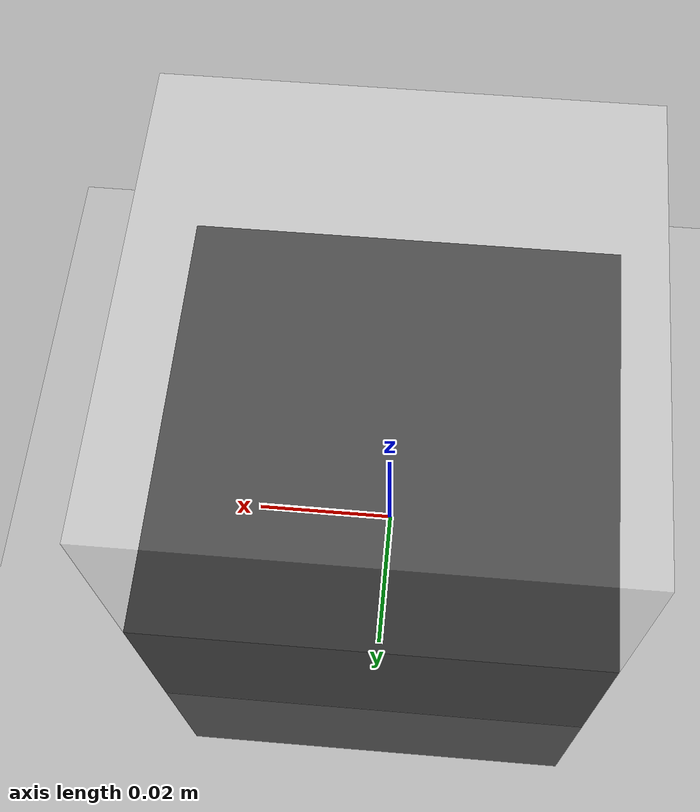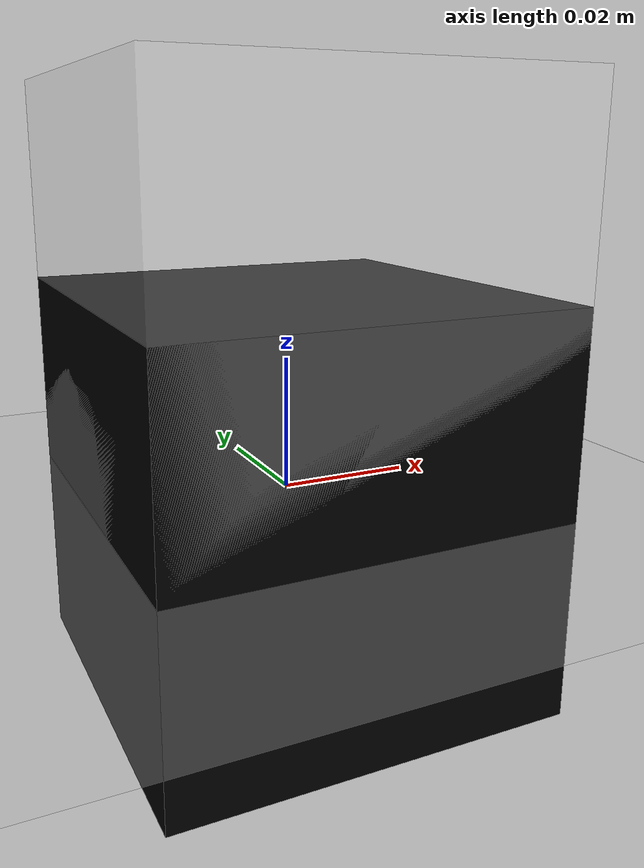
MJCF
<mujoco model="single_fingertip_scene">
    <visual>
        <global offwidth="1280" offheight="960"/>
    </visual>
    <compiler angle="radian"/>
    <size njmax="500" nconmax="100"/>
    <asset>
        <texture name="cube_surface" file="../assets/textures/iris_block.png" gridsize="3 4" gridlayout=".U..LFRB.D.."/>
        <material name="obj_material" texture="cube_surface" specular="15" shininess="0.0"/>
        <texture type="2d" name="groundplane" builtin="checker" mark="edge"
                 rgb1="0.2 0.3 0.4" rgb2="0.1 0.2 0.3" markrgb="0.8 0.8 0.8"
                 width="300" height="300"/>
        <material name="groundplane" texture="groundplane" texuniform="true" texrepeat="5 5"
                  reflectance="0.0"/>
    </asset>

    <worldbody>
        <light directional="true" ambient="0.6 0.6 0.6" diffuse="0.8 0.8 0.8"
               castshadow="false" pos="0 1 4" dir="0 0 -1" name="light0"/>

        <!-- Example cameras (optional) -->
        <camera name="demo-cam"  pos="0.086 -0.324 0.157" xyaxes="0.966 0.259 0.000 -0.102 0.380 0.919"/>
        <camera name="demo-cam2" pos="-0.003 -0.654 0.316" xyaxes="1.000 -0.005 0.000 0.002 0.435 0.900"/>
        <camera name="demo-cam3" pos="0.010 -0.385 0.122" xyaxes="1.000 -0.004 0.000 0.001 0.208 0.978"/>

        <!-- ============================= Virtual object (goal) ========================================= -->
        <body name="goal" pos="0.0 0.0 0.03">
            <geom name="goal" size="0.030 0.030 0.030" material="obj_material" type="box"
                  conaffinity="0" contype="0" rgba="1 1 1 0.3"/>
            <geom name="goal-decoration" size="0.030 0.030 0.030" type="box"
                  conaffinity="0" contype="0" rgba="0 1 0 0.2"/>
        </body>

        <!-- ============================= Real object ========================================= -->
        <body name="obj">
            <freejoint name="object_table"/>
            <geom name="obj" type="box" size="0.030 0.030 0.030" material="obj_material"
                  pos="0.0 0.0 0.0" quat="1 0 0 0"
                  mass="0.01"
                  condim="6"
                  friction="0.9" rgba="0 0 0 1"/>
        </body>

        <!-- Table / ground plane -->
        <geom name="table" type="plane" material="groundplane"
              condim="6" friction="0.5"
              size="0 0 0.05" rgba="0.8 0.8 0.8 1.0"/>

        <!-- Vertical wall -->
        <geom name="wall" type="plane" material="groundplane"
              condim="6" friction="0.5"
              size="0 0 0.05" rgba="0.8 0.8 0.8 1.0"/>

        <!-- ============================= Single fingertip ============================= -->
        <body name="fingertip0" pos="0.0 0.0 0.0" quat="1 0 0 0">
            <!-- Three slide joints (x, y, z) -->
            <joint name="fingertip0_x" type="slide" axis="1 0 0"/>
            <joint name="fingertip0_y" type="slide" axis="0 1 0"/>
            <joint name="fingertip0_z" type="slide" axis="0 0 1"/>

            <!-- Geom for the fingertip -->
            <geom name="fingertip0" type="sphere" size="0.01"
                  condim="6"
                  pos="0.0 0.0 0.0" quat="1 0 0 0"
                  friction="0.5" rgba="0.5 0 0 1"/>
        </body>
    </worldbody>

    <actuator>
        <!-- Actuators controlling the single fingertip's x, y, and z slide joints -->
        <motor name="fingertip0_refx" joint="fingertip0_x" ctrlrange="-1.5 1.5" ctrllimited="false"/>
        <motor name="fingertip0_refy" joint="fingertip0_y" ctrlrange="-1.5 1.5" ctrllimited="false"/>
        <motor name="fingertip0_refz" joint="fingertip0_z" ctrlrange="-1.5 1.5" ctrllimited="false"/>
    </actuator>
</mujoco>
